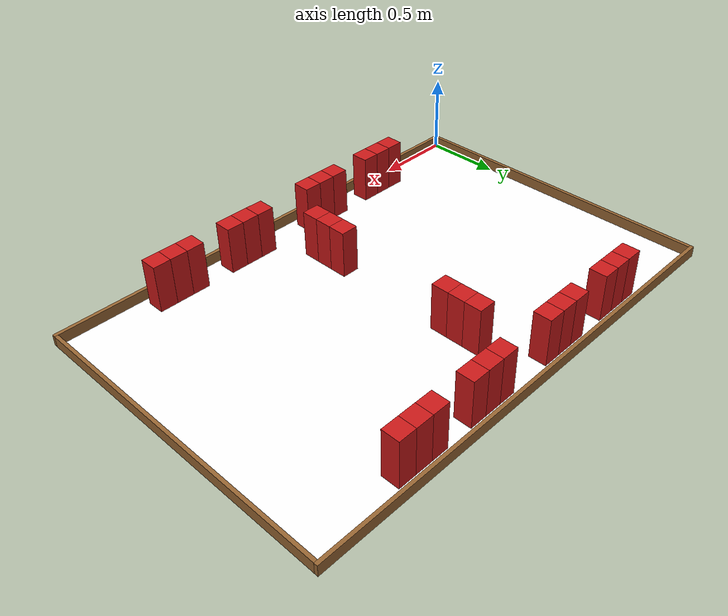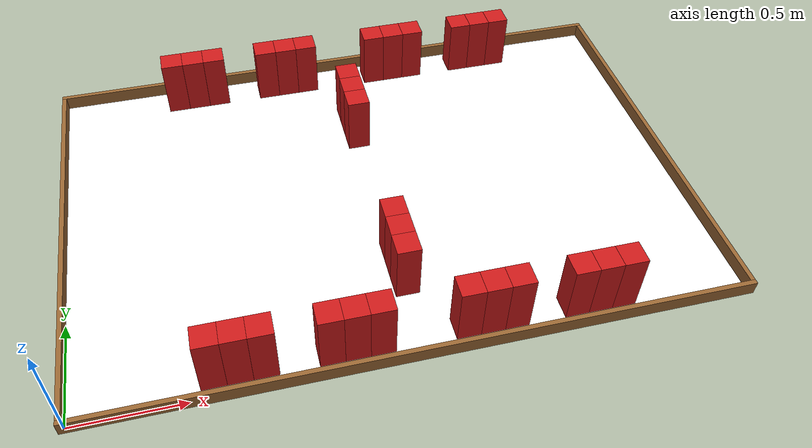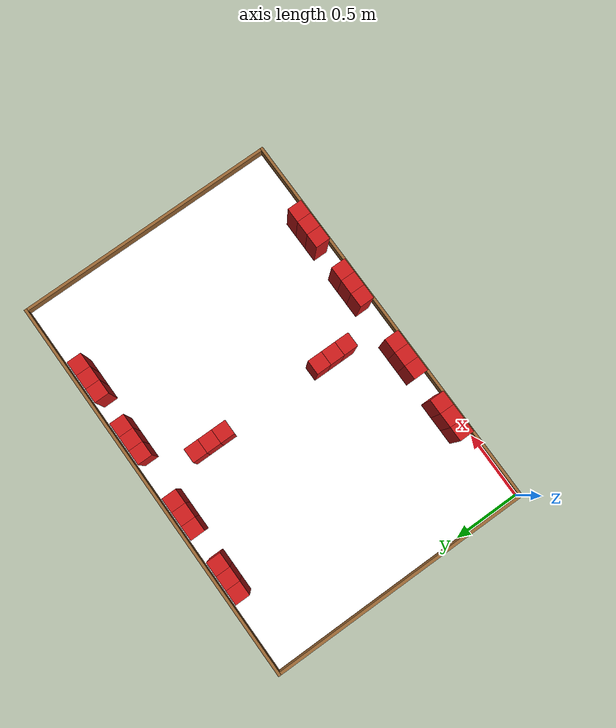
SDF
<?xml version="1.0" ?>
<sdf version="1.8">
  <world name="eurobot_2027_world">

    <!-- Motores del simulador (Físicas, comandos e interfaz de usuario) -->
    <plugin filename="ignition-gazebo-physics-system" name="ignition::gazebo::systems::Physics"/>
    <plugin filename="ignition-gazebo-scene-broadcaster-system" name="ignition::gazebo::systems::SceneBroadcaster"/>
    <plugin filename="ignition-gazebo-user-commands-system" name="ignition::gazebo::systems::UserCommands"/>

    <!-- Iluminación Global -->
    <light type="directional" name="sun">
      <cast_shadows>true</cast_shadows>
      <pose>0 0 10 0 0 0</pose>
      <diffuse>0.8 0.8 0.8 1</diffuse>
      <specular>0.2 0.2 0.2 1</specular>
      <direction>-0.5 0.1 -0.9</direction>
    </light>

    <!-- TAPETE (Suelo del robot en Z=0)                              -->
    <model name="tapete_eurobot">
      <!-- Static true el robot no lo mueve, false lo pude coger-->
      <static>true</static>
      <pose>1.5 1.0 0 0 0 0</pose>
      <link name="link">
        <collision name="collision">
          <geometry>
            <plane>
              <normal>0 0 1</normal>
              <size>3.0 2.0</size>
            </plane>
          </geometry>
          <surface>
            <friction>
              <ode>
                <mu>1.0</mu>
                <mu2>1.0</mu2>
              </ode>
            </friction>
          </surface>
        </collision>
        <visual name="visual">
          <geometry>
            <plane>
              <normal>0 0 1</normal>
              <size>3.0 2.0</size>
            </plane>
          </geometry>
          <material>
            <!-- Luz ambiental blanca para no distorsionar los colores -->
            <ambient>1 1 1 1</ambient>
            <diffuse>1 1 1 1</diffuse>
            <pbr>
            <metal>
                <!-- La ruta es relativa a la ubicación del archivo .png -->
                <albedo_map>materials/textures/mapa_eurobot2027.png</albedo_map>
            </metal>
            </pbr>
          </material>
        </visual>
      </link>
    </model>

    <!-- BORDES DE MADERA (Estáticos)                               -->
    <model name="bordes_mesa">
      <static>true</static>
      <pose>1.5 1.0 0 0 0 0</pose>

      <!-- Borde Superior (+Y) -->
      <link name="borde_norte">
        <pose>0 1.011 0.035 0 0 0</pose>
        <collision name="col"><geometry><box><size>3.044 0.022 0.07</size></box></geometry></collision>
        <visual name="vis"><geometry><box><size>3.044 0.022 0.07</size></box></geometry><material><ambient>0.6 0.4 0.2 1</ambient></material></visual>
      </link>

      <!-- Borde Inferior (-Y) -->
      <link name="borde_sur">
        <pose>0 -1.011 0.035 0 0 0</pose>
        <collision name="col"><geometry><box><size>3.044 0.022 0.07</size></box></geometry></collision>
        <visual name="vis"><geometry><box><size>3.044 0.022 0.07</size></box></geometry><material><ambient>0.6 0.4 0.2 1</ambient></material></visual>
      </link>

      <!-- Borde Izquierdo (-X) -->
      <link name="borde_oeste">
        <pose>-1.511 0 0.035 0 0 0</pose>
        <collision name="col"><geometry><box><size>0.022 2.0 0.07</size></box></geometry></collision>
        <visual name="vis"><geometry><box><size>0.022 2.0 0.07</size></box></geometry><material><ambient>0.6 0.4 0.2 1</ambient></material></visual>
      </link>

      <!-- Borde Derecho (+X) -->
      <link name="borde_este">
        <pose>1.511 0 0.035 0 0 0</pose>
        <collision name="col"><geometry><box><size>0.022 2.0 0.07</size></box></geometry></collision>
        <visual name="vis"><geometry><box><size>0.022 2.0 0.07</size></box></geometry><material><ambient>0.6 0.4 0.2 1</ambient></material></visual>
      </link>
    </model>

    <!-- CAJAS MÓVILES (Elementos de juego con físicas)             -->

    <!-- Pack Izquierdo 1 -->
    <include><name>caja_1</name><pose> 0.6 1.9 0.15 0 0 0</pose><uri>caja.sdf</uri></include>
    <include><name>caja_2</name><pose> 0.71 1.9 0.15 0 0 0</pose><uri>caja.sdf</uri></include>
    <include><name>caja_3</name><pose> 0.82 1.9 0.15 0 0 0</pose><uri>caja.sdf</uri></include>

    <!-- Pack Izquierdo 2 -->
    <include><name>caja_4</name><pose> 1.1 1.9 0.15 0 0 0</pose><uri>caja.sdf</uri></include>
    <include><name>caja_5</name><pose> 1.21 1.9 0.15 0 0 0</pose><uri>caja.sdf</uri></include>
    <include><name>caja_6</name><pose> 1.32 1.9 0.15 0 0 0</pose><uri>caja.sdf</uri></include>

    <!-- Pack Izquierdo 3 -->
    <include><name>caja_7</name><pose> 1.7 1.9 0.15 0 0 0</pose><uri>caja.sdf</uri></include>
    <include><name>caja_8</name><pose> 1.81 1.9 0.15 0 0 0</pose><uri>caja.sdf</uri></include>
    <include><name>caja_9</name><pose> 1.92 1.9 0.15 0 0 0</pose><uri>caja.sdf</uri></include>

    <!-- Pack Izquierdo 4 -->
    <include><name>caja_10</name><pose> 2.2 1.9 0.15 0 0 0</pose><uri>caja.sdf</uri></include>
    <include><name>caja_11</name><pose> 2.31 1.9 0.15 0 0 0</pose><uri>caja.sdf</uri></include>
    <include><name>caja_12</name><pose> 2.42 1.9 0.15 0 0 0</pose><uri>caja.sdf</uri></include>

    <!-- Pack Derecho 1 -->
    <include><name>caja_13</name><pose> 0.6 0.1 0.15 0 0 0</pose><uri>caja.sdf</uri></include>
    <include><name>caja_14</name><pose> 0.71 0.1 0.15 0 0 0</pose><uri>caja.sdf</uri></include>
    <include><name>caja_15</name><pose> 0.82 0.1 0.15 0 0 0</pose><uri>caja.sdf</uri></include>

    <!-- Pack Derecho 2 -->
    <include><name>caja_16</name><pose> 1.1 0.1 0.15 0 0 0</pose><uri>caja.sdf</uri></include>
    <include><name>caja_17</name><pose> 1.21 0.1 0.15 0 0 0</pose><uri>caja.sdf</uri></include>
    <include><name>caja_18</name><pose> 1.32 0.1 0.15 0 0 0</pose><uri>caja.sdf</uri></include>

    <!-- Pack Derecho 3 -->
    <include><name>caja_19</name><pose> 1.7 0.1 0.15 0 0 0</pose><uri>caja.sdf</uri></include>
    <include><name>caja_20</name><pose> 1.81 0.1 0.15 0 0 0</pose><uri>caja.sdf</uri></include>
    <include><name>caja_21</name><pose> 1.92 0.1 0.15 0 0 0</pose><uri>caja.sdf</uri></include>

    <!-- Pack Derecho 4 -->
    <include><name>caja_22</name><pose> 2.2 0.1 0.15 0 0 0</pose><uri>caja.sdf</uri></include>
    <include><name>caja_23</name><pose> 2.31 0.1 0.15 0 0 0</pose><uri>caja.sdf</uri></include>
    <include><name>caja_24</name><pose> 2.42 0.1 0.15 0 0 0</pose><uri>caja.sdf</uri></include>

    <!-- Pack Central 1 -->
    <include><name>caja_25</name><pose> 1.5 1.6 0.15 0 0 0</pose><uri>caja.sdf</uri></include>
    <include><name>caja_26</name><pose> 1.5 1.49 0.15 0 0 0</pose><uri>caja.sdf</uri></include>
    <include><name>caja_27</name><pose> 1.5 1.38 0.15 0 0 0</pose><uri>caja.sdf</uri></include>

    <!-- Pack Central 2 -->
    <include><name>caja_28</name><pose> 1.5 0.6 0.15 0 0 0</pose><uri>caja.sdf</uri></include>
    <include><name>caja_29</name><pose> 1.5 0.49 0.15 0 0 0</pose><uri>caja.sdf</uri></include>
    <include><name>caja_30</name><pose> 1.5 0.38 0.15 0 0 0</pose><uri>caja.sdf</uri></include>

  </world>
</sdf>

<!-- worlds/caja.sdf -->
<sdf version="1.8">
  <model name="caja_base">
    <static>false</static>
    <link name="link">
      <inertial>
        <mass>0.06</mass>
        <inertia>
          <ixx>0.0005105</ixx><iyy>0.0005105</iyy><izz>0.000121</izz>
          <ixy>0</ixy><ixz>0</ixz><iyz>0</iyz>
        </inertia>
      </inertial>
      <collision name="collision"><geometry><box><size>0.11 0.11 0.3</size></box></geometry></collision>
      <visual name="visual">
        <geometry><box><size>0.11 0.11 0.3</size></box></geometry>
        <material><ambient>0.8 0.1 0.1 1</ambient><diffuse>0.8 0.1 0.1 1</diffuse></material>
      </visual>
    </link>
  </model>
</sdf>
